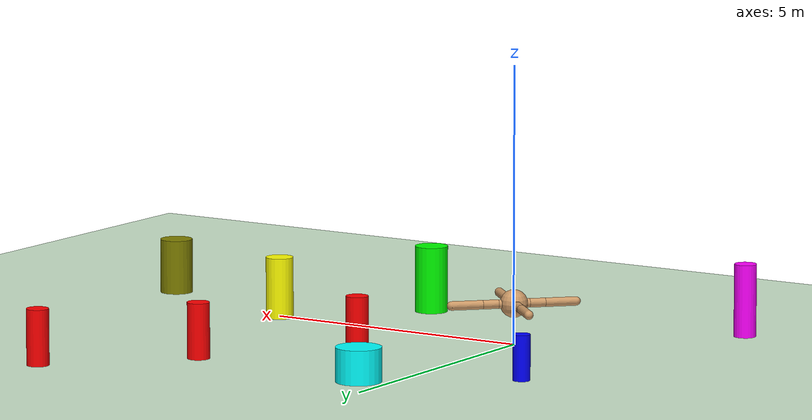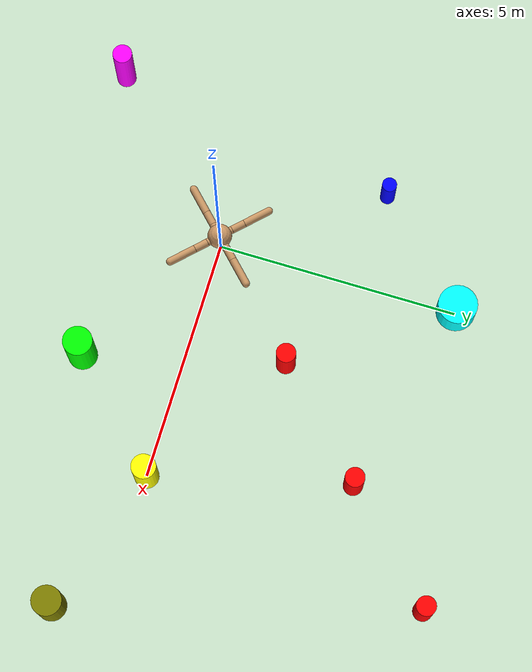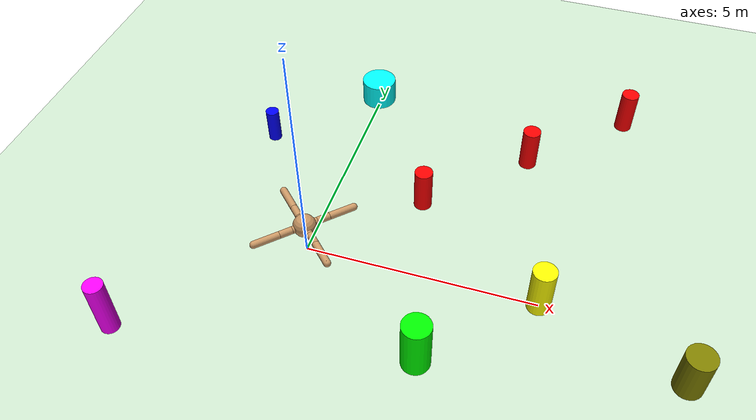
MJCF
<mujoco model="ant">
  <compiler angle="degree" coordinate="local" inertiafromgeom="true"/>
  <option integrator="RK4" timestep="0.01"/>
  <custom>
    <numeric data="0.0 0.0 0.55 1.0 0.0 0.0 0.0 0.0 1.0 0.0 -1.0 0.0 -1.0 0.0 1.0" name="init_qpos"/>
  </custom>
  <default>
    <joint armature="1" damping="1" limited="true"/>
    <geom conaffinity="0" condim="3" density="5.0" friction="1 0.5 0.5" margin="0.01" rgba="0.8 0.6 0.4 1"/>
  </default>
  <asset>
    <texture builtin="gradient" height="100" rgb1="1 1 1" rgb2="0 0 0" type="skybox" width="100"/>
    <texture builtin="flat" height="1278" mark="cross" markrgb="1 1 1" name="texgeom" random="0.01" rgb1="0.8 0.6 0.4" rgb2="0.8 0.6 0.4" type="cube" width="127"/>
    <texture builtin="checker" height="100" name="texplane" rgb1="0 0 0" rgb2="0.8 0.8 0.8" type="2d" width="100"/>
    <material name="MatPlane" reflectance="0.5" shininess="1" specular="1" texrepeat="60 60" texture="texplane"/>
    <material name="geom" texture="texgeom" texuniform="true"/>
    <geom name="hill" type="ellipsoid" pos="3 0 0" size="1 1 0.5" rgba="0.4 0.3 0.2 1"/>
  </asset>
  <worldbody>
    <light cutoff="100" diffuse="1 1 1" dir="-0 0 -1.3" directional="true" exponent="1" pos="0 0 1.3" specular=".1 .1 .1"/>
    <geom conaffinity="1" condim="3" material="MatPlane" name="floor" pos="0 0 0" rgba="0.8 0.9 0.8 1" size="40 40 40" type="plane"/>
    <body name="torso" pos="0 0 0.75">
      <camera name="track" mode="trackcom" pos="0 -3 0.3" xyaxes="1 0 0 0 0 1"/>
      <geom name="torso_geom" pos="0 0 0" size="0.25" type="sphere"/>
      <joint armature="0" damping="0" limited="false" margin="0.01" name="root" pos="0 0 0" type="free"/>
      <body name="front_left_leg" pos="0 0 0">
        <geom fromto="0.0 0.0 0.0 0.2 0.2 0.0" name="aux_1_geom" size="0.08" type="capsule"/>
        <body name="aux_1" pos="0.2 0.2 0">
          <joint axis="0 0 1" name="hip_1" pos="0.0 0.0 0.0" range="-30 30" type="hinge"/>
          <geom fromto="0.0 0.0 0.0 0.2 0.2 0.0" name="left_leg_geom" size="0.08" type="capsule"/>
          <body pos="0.2 0.2 0">
            <joint axis="-1 1 0" name="ankle_1" pos="0.0 0.0 0.0" range="30 70" type="hinge"/>
            <geom fromto="0.0 0.0 0.0 0.4 0.4 0.0" name="left_ankle_geom" size="0.08" type="capsule"/>
          </body>
        </body>
      </body>
      <body name="front_right_leg" pos="0 0 0">
        <geom fromto="0.0 0.0 0.0 -0.2 0.2 0.0" name="aux_2_geom" size="0.08" type="capsule"/>
        <body name="aux_2" pos="-0.2 0.2 0">
          <joint axis="0 0 1" name="hip_2" pos="0.0 0.0 0.0" range="-30 30" type="hinge"/>
          <geom fromto="0.0 0.0 0.0 -0.2 0.2 0.0" name="right_leg_geom" size="0.08" type="capsule"/>
          <body pos="-0.2 0.2 0">
            <joint axis="1 1 0" name="ankle_2" pos="0.0 0.0 0.0" range="-70 -30" type="hinge"/>
            <geom fromto="0.0 0.0 0.0 -0.4 0.4 0.0" name="right_ankle_geom" size="0.08" type="capsule"/>
          </body>
        </body>
      </body>
      <body name="back_leg" pos="0 0 0">
        <geom fromto="0.0 0.0 0.0 -0.2 -0.2 0.0" name="aux_3_geom" size="0.08" type="capsule"/>
        <body name="aux_3" pos="-0.2 -0.2 0">
          <joint axis="0 0 1" name="hip_3" pos="0.0 0.0 0.0" range="-30 30" type="hinge"/>
          <geom fromto="0.0 0.0 0.0 -0.2 -0.2 0.0" name="back_leg_geom" size="0.08" type="capsule"/>
          <body pos="-0.2 -0.2 0">
            <joint axis="-1 1 0" name="ankle_3" pos="0.0 0.0 0.0" range="-70 -30" type="hinge"/>
            <geom fromto="0.0 0.0 0.0 -0.4 -0.4 0.0" name="third_ankle_geom" size="0.08" type="capsule"/>
          </body>
        </body>
      </body>
      <body name="right_back_leg" pos="0 0 0">
        <geom fromto="0.0 0.0 0.0 0.2 -0.2 0.0" name="aux_4_geom" size="0.08" type="capsule"/>
        <body name="aux_4" pos="0.2 -0.2 0">
          <joint axis="0 0 1" name="hip_4" pos="0.0 0.0 0.0" range="-30 30" type="hinge"/>
          <geom fromto="0.0 0.0 0.0 0.2 -0.2 0.0" name="rightback_leg_geom" size="0.08" type="capsule"/>
          <body pos="0.2 -0.2 0">
            <joint axis="1 1 0" name="ankle_4" pos="0.0 0.0 0.0" range="30 70" type="hinge"/>
            <geom fromto="0.0 0.0 0.0 0.4 -0.4 0.0" name="fourth_ankle_geom" size="0.08" type="capsule"/>
          </body>
        </body>
      </body>
    </body>

       <body name="obstacle_1" pos="2 2 0.5">
            <geom name="obs1" type="cylinder" size="0.2 0.5" rgba="1 0 0 1" contype="1" conaffinity="1"/>
        </body>
        <body name="obstacle_2" pos="4 4 0.5">
            <geom name="obs2" type="cylinder" size="0.2 0.5" rgba="1 0 0 1" contype="1" conaffinity="1"/>
        </body>
        <body name="obstacle_3" pos="6 6 0.5">
            <geom name="obs3" type="cylinder" size="0.2 0.5" rgba="1 0 0 1" contype="1" conaffinity="1"/>
        </body>
        <body name="obstacle_4" pos="3 -2 0.5">
            <geom name="obs4" type="cylinder" size="0.3 0.7" rgba="0 1 0 1" contype="1" conaffinity="1"/>
        </body>
        <body name="obstacle_5" pos="-2 3 0.5">
            <geom name="obs5" type="cylinder" size="0.15 0.4" rgba="0 0 1 1" contype="1" conaffinity="1"/>
        </body>
        <body name="obstacle_6" pos="5 0 0.5">
            <geom name="obs6" type="cylinder" size="0.25 0.6" rgba="1 1 0 1" contype="1" conaffinity="1"/>
        </body>
        <body name="obstacle_7" pos="-3 -3 0.5">
            <geom name="obs7" type="cylinder" size="0.2 0.8" rgba="1 0 1 1" contype="1" conaffinity="1"/>
        </body>
        <body name="obstacle_8" pos="0 5 0.5">
            <geom name="obs8" type="cylinder" size="0.4 0.3" rgba="0 1 1 1" contype="1" conaffinity="1"/>
        </body>
        <body name="obstacle_9" pos="8 -1 0.5">
            <geom name="obs9" type="cylinder" size="0.3 0.5" rgba="0.5 0.5 0 1" contype="1" conaffinity="1"/>
        </body>

</worldbody>
  <actuator>
    <motor ctrllimited="true" ctrlrange="-1.0 1.0" joint="hip_4" gear="150"/>
    <motor ctrllimited="true" ctrlrange="-1.0 1.0" joint="ankle_4" gear="150"/>
    <motor ctrllimited="true" ctrlrange="-1.0 1.0" joint="hip_1" gear="150"/>
    <motor ctrllimited="true" ctrlrange="-1.0 1.0" joint="ankle_1" gear="150"/>
    <motor ctrllimited="true" ctrlrange="-1.0 1.0" joint="hip_2" gear="150"/>
    <motor ctrllimited="true" ctrlrange="-1.0 1.0" joint="ankle_2" gear="150"/>
    <motor ctrllimited="true" ctrlrange="-1.0 1.0" joint="hip_3" gear="150"/>
    <motor ctrllimited="true" ctrlrange="-1.0 1.0" joint="ankle_3" gear="150"/>
  </actuator>
</mujoco>
